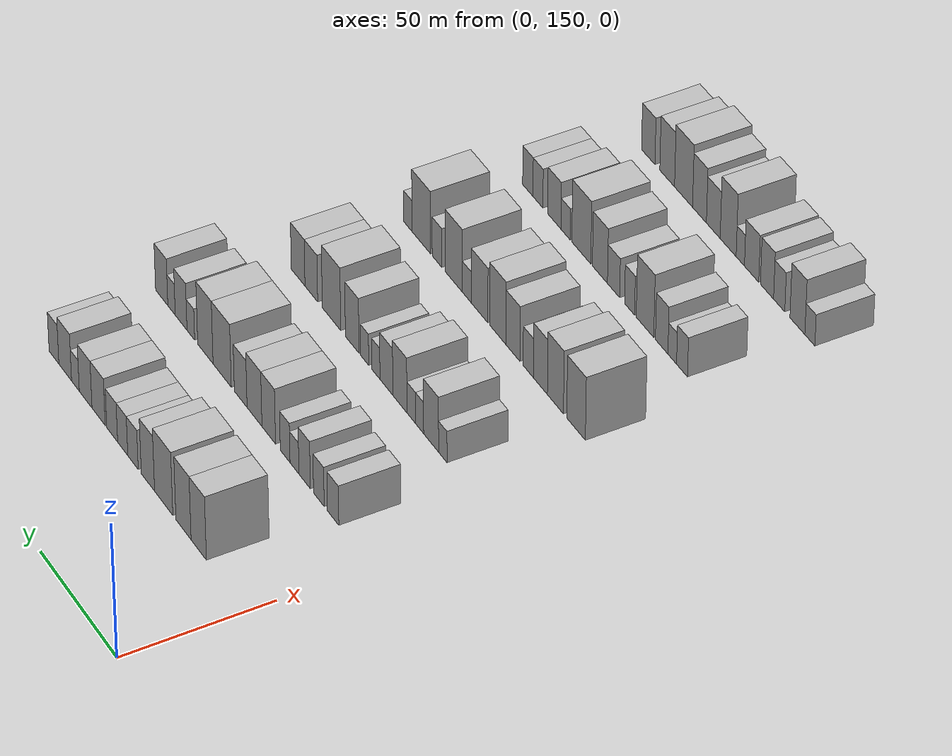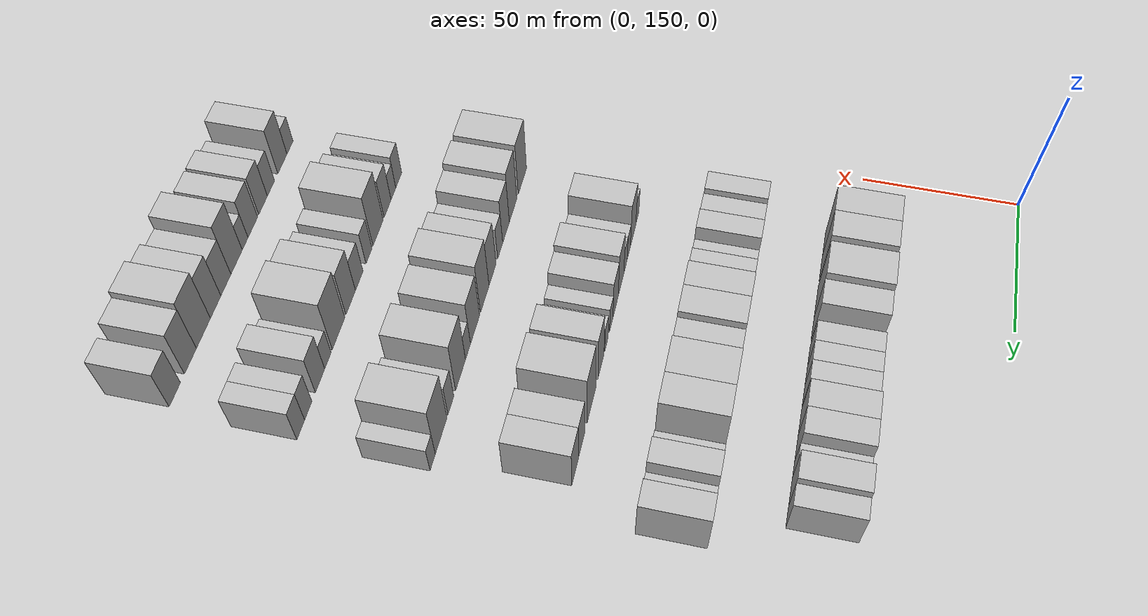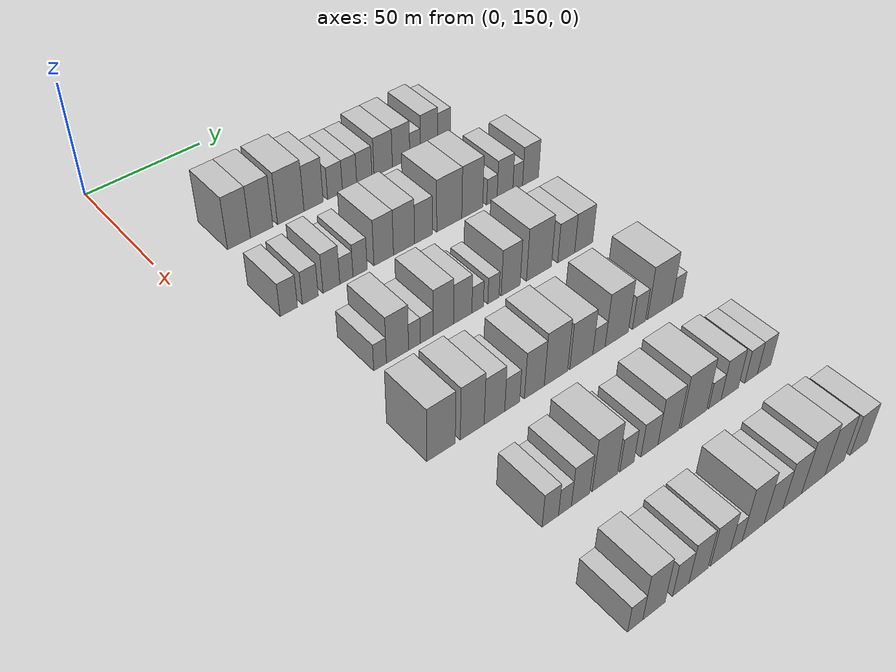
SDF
<sdf version="1.6">
 <world name="default">
  <model name="building_90">
   <static>1</static>
   <pose>50.0000 179.4211 0 0.000000 0.000000 0.000000</pose>
   <link name="link">
    <pose>0 0 12.00 0 0 0</pose>
    <collision name="collision"><geometry><box><size>20.0000 9.7847 24.0000</size></box></geometry></collision>
    <visual name="visual">
     <cast_shadows>0</cast_shadows>
     <geometry><box><size>20.0000 9.7847 24.0000</size></box></geometry>
     <material>
      <script>
       <uri>model://HANNAS_wall/materials/scripts</uri>
       <uri>model://HANNAS_wall/materials/textures</uri>
       <name>vrc/HANNAS_wall</name>
      </script>
     </material>
    </visual>
   </link>
  </model>
  <model name="building_91">
   <static>1</static>
   <pose>50.0000 189.1958 0 0.000000 0.000000 0.000000</pose>
   <link name="link">
    <pose>0 0 12.00 0 0 0</pose>
    <collision name="collision"><geometry><box><size>20.0000 9.7649 24.0000</size></box></geometry></collision>
    <visual name="visual">
     <cast_shadows>0</cast_shadows>
     <geometry><box><size>20.0000 9.7649 24.0000</size></box></geometry>
     <material>
      <script>
       <uri>model://HANNAS_wall/materials/scripts</uri>
       <uri>model://HANNAS_wall/materials/textures</uri>
       <name>vrc/HANNAS_wall</name>
      </script>
     </material>
    </visual>
   </link>
  </model>
  <model name="building_92">
   <static>1</static>
   <pose>50.0000 201.9867 0 0.000000 0.000000 0.000000</pose>
   <link name="link">
    <pose>0 0 12.00 0 0 0</pose>
    <collision name="collision"><geometry><box><size>20.0000 11.8168 24.0000</size></box></geometry></collision>
    <visual name="visual">
     <cast_shadows>0</cast_shadows>
     <geometry><box><size>20.0000 11.8168 24.0000</size></box></geometry>
     <material>
      <script>
       <uri>model://HANNAS_wall/materials/scripts</uri>
       <uri>model://HANNAS_wall/materials/textures</uri>
       <name>vrc/HANNAS_wall</name>
      </script>
     </material>
    </visual>
   </link>
  </model>
  <model name="building_93">
   <static>1</static>
   <pose>50.0000 212.2501 0 0.000000 0.000000 0.000000</pose>
   <link name="link">
    <pose>0 0 10.50 0 0 0</pose>
    <collision name="collision"><geometry><box><size>20.0000 8.7102 21.0000</size></box></geometry></collision>
    <visual name="visual">
     <cast_shadows>0</cast_shadows>
     <geometry><box><size>20.0000 8.7102 21.0000</size></box></geometry>
     <material>
      <script>
       <uri>model://HANNAS_wall/materials/scripts</uri>
       <uri>model://HANNAS_wall/materials/textures</uri>
       <name>vrc/HANNAS_wall</name>
      </script>
     </material>
    </visual>
   </link>
  </model>
  <model name="building_94">
   <static>1</static>
   <pose>50.0000 222.0430 0 0.000000 0.000000 0.000000</pose>
   <link name="link">
    <pose>0 0 7.50 0 0 0</pose>
    <collision name="collision"><geometry><box><size>20.0000 6.8756 15.0000</size></box></geometry></collision>
    <visual name="visual">
     <cast_shadows>0</cast_shadows>
     <geometry><box><size>20.0000 6.8756 15.0000</size></box></geometry>
     <material>
      <script>
       <uri>model://HANNAS_wall/materials/scripts</uri>
       <uri>model://HANNAS_wall/materials/textures</uri>
       <name>vrc/HANNAS_wall</name>
      </script>
     </material>
    </visual>
   </link>
  </model>
  <model name="building_95">
   <static>1</static>
   <pose>50.0000 228.8291 0 0.000000 0.000000 0.000000</pose>
   <link name="link">
    <pose>0 0 7.50 0 0 0</pose>
    <collision name="collision"><geometry><box><size>20.0000 6.6965 15.0000</size></box></geometry></collision>
    <visual name="visual">
     <cast_shadows>0</cast_shadows>
     <geometry><box><size>20.0000 6.6965 15.0000</size></box></geometry>
     <material>
      <script>
       <uri>model://HANNAS_wall/materials/scripts</uri>
       <uri>model://HANNAS_wall/materials/textures</uri>
       <name>vrc/HANNAS_wall</name>
      </script>
     </material>
    </visual>
   </link>
  </model>
  <model name="building_96">
   <static>1</static>
   <pose>50.0000 235.7858 0 0.000000 0.000000 0.000000</pose>
   <link name="link">
    <pose>0 0 7.50 0 0 0</pose>
    <collision name="collision"><geometry><box><size>20.0000 7.2170 15.0000</size></box></geometry></collision>
    <visual name="visual">
     <cast_shadows>0</cast_shadows>
     <geometry><box><size>20.0000 7.2170 15.0000</size></box></geometry>
     <material>
      <script>
       <uri>model://HANNAS_wall/materials/scripts</uri>
       <uri>model://HANNAS_wall/materials/textures</uri>
       <name>vrc/HANNAS_wall</name>
      </script>
     </material>
    </visual>
   </link>
  </model>
  <model name="building_97">
   <static>1</static>
   <pose>50.0000 244.8151 0 0.000000 0.000000 0.000000</pose>
   <link name="link">
    <pose>0 0 9.00 0 0 0</pose>
    <collision name="collision"><geometry><box><size>20.0000 8.8417 18.0000</size></box></geometry></collision>
    <visual name="visual">
     <cast_shadows>0</cast_shadows>
     <geometry><box><size>20.0000 8.8417 18.0000</size></box></geometry>
     <material>
      <script>
       <uri>model://HANNAS_wall/materials/scripts</uri>
       <uri>model://HANNAS_wall/materials/textures</uri>
       <name>vrc/HANNAS_wall</name>
      </script>
     </material>
    </visual>
   </link>
  </model>
  <model name="building_98">
   <static>1</static>
   <pose>50.0000 253.5076 0 0.000000 0.000000 0.000000</pose>
   <link name="link">
    <pose>0 0 9.00 0 0 0</pose>
    <collision name="collision"><geometry><box><size>20.0000 8.5432 18.0000</size></box></geometry></collision>
    <visual name="visual">
     <cast_shadows>0</cast_shadows>
     <geometry><box><size>20.0000 8.5432 18.0000</size></box></geometry>
     <material>
      <script>
       <uri>model://HANNAS_wall/materials/scripts</uri>
       <uri>model://HANNAS_wall/materials/textures</uri>
       <name>vrc/HANNAS_wall</name>
      </script>
     </material>
    </visual>
   </link>
  </model>
  <model name="building_99">
   <static>1</static>
   <pose>50.0000 260.3850 0 0.000000 0.000000 0.000000</pose>
   <link name="link">
    <pose>0 0 6.00 0 0 0</pose>
    <collision name="collision"><geometry><box><size>20.0000 5.2115 12.0000</size></box></geometry></collision>
    <visual name="visual">
     <cast_shadows>0</cast_shadows>
     <geometry><box><size>20.0000 5.2115 12.0000</size></box></geometry>
     <material>
      <script>
       <uri>model://HANNAS_wall/materials/scripts</uri>
       <uri>model://HANNAS_wall/materials/textures</uri>
       <name>vrc/HANNAS_wall</name>
      </script>
     </material>
    </visual>
   </link>
  </model>
  <model name="building_100">
   <static>1</static>
   <pose>50.0000 267.2898 0 0.000000 0.000000 0.000000</pose>
   <link name="link">
    <pose>0 0 9.00 0 0 0</pose>
    <collision name="collision"><geometry><box><size>20.0000 8.5982 18.0000</size></box></geometry></collision>
    <visual name="visual">
     <cast_shadows>0</cast_shadows>
     <geometry><box><size>20.0000 8.5982 18.0000</size></box></geometry>
     <material>
      <script>
       <uri>model://HANNAS_wall/materials/scripts</uri>
       <uri>model://HANNAS_wall/materials/textures</uri>
       <name>vrc/HANNAS_wall</name>
      </script>
     </material>
    </visual>
   </link>
  </model>
  <model name="building_101">
   <static>1</static>
   <pose>50.0000 274.9025 0 0.000000 0.000000 0.000000</pose>
   <link name="link">
    <pose>0 0 7.50 0 0 0</pose>
    <collision name="collision"><geometry><box><size>20.0000 6.6271 15.0000</size></box></geometry></collision>
    <visual name="visual">
     <cast_shadows>0</cast_shadows>
     <geometry><box><size>20.0000 6.6271 15.0000</size></box></geometry>
     <material>
      <script>
       <uri>model://HANNAS_wall/materials/scripts</uri>
       <uri>model://HANNAS_wall/materials/textures</uri>
       <name>vrc/HANNAS_wall</name>
      </script>
     </material>
    </visual>
   </link>
  </model>
  <model name="building_220">
   <static>1</static>
   <pose>90.0000 173.5427 0 0.000000 0.000000 0.000000</pose>
   <link name="link">
    <pose>0 0 7.50 0 0 0</pose>
    <collision name="collision"><geometry><box><size>20.0000 7.1521 15.0000</size></box></geometry></collision>
    <visual name="visual">
     <cast_shadows>0</cast_shadows>
     <geometry><box><size>20.0000 7.1521 15.0000</size></box></geometry>
     <material>
      <script>
       <uri>model://HANNAS_wall/materials/scripts</uri>
       <uri>model://HANNAS_wall/materials/textures</uri>
       <name>vrc/HANNAS_wall</name>
      </script>
     </material>
    </visual>
   </link>
  </model>
  <model name="building_221">
   <static>1</static>
   <pose>90.0000 182.4620 0 0.000000 0.000000 0.000000</pose>
   <link name="link">
    <pose>0 0 7.50 0 0 0</pose>
    <collision name="collision"><geometry><box><size>20.0000 6.6865 15.0000</size></box></geometry></collision>
    <visual name="visual">
     <cast_shadows>0</cast_shadows>
     <geometry><box><size>20.0000 6.6865 15.0000</size></box></geometry>
     <material>
      <script>
       <uri>model://HANNAS_wall/materials/scripts</uri>
       <uri>model://HANNAS_wall/materials/textures</uri>
       <name>vrc/HANNAS_wall</name>
      </script>
     </material>
    </visual>
   </link>
  </model>
  <model name="building_222">
   <static>1</static>
   <pose>90.0000 191.4088 0 0.000000 0.000000 0.000000</pose>
   <link name="link">
    <pose>0 0 9.00 0 0 0</pose>
    <collision name="collision"><geometry><box><size>20.0000 7.2071 18.0000</size></box></geometry></collision>
    <visual name="visual">
     <cast_shadows>0</cast_shadows>
     <geometry><box><size>20.0000 7.2071 18.0000</size></box></geometry>
     <material>
      <script>
       <uri>model://HANNAS_wall/materials/scripts</uri>
       <uri>model://HANNAS_wall/materials/textures</uri>
       <name>vrc/HANNAS_wall</name>
      </script>
     </material>
    </visual>
   </link>
  </model>
  <model name="building_223">
   <static>1</static>
   <pose>90.0000 197.8540 0 0.000000 0.000000 0.000000</pose>
   <link name="link">
    <pose>0 0 6.00 0 0 0</pose>
    <collision name="collision"><geometry><box><size>20.0000 5.6833 12.0000</size></box></geometry></collision>
    <visual name="visual">
     <cast_shadows>0</cast_shadows>
     <geometry><box><size>20.0000 5.6833 12.0000</size></box></geometry>
     <material>
      <script>
       <uri>model://HANNAS_wall/materials/scripts</uri>
       <uri>model://HANNAS_wall/materials/textures</uri>
       <name>vrc/HANNAS_wall</name>
      </script>
     </material>
    </visual>
   </link>
  </model>
  <model name="building_224">
   <static>1</static>
   <pose>90.0000 203.7961 0 0.000000 0.000000 0.000000</pose>
   <link name="link">
    <pose>0 0 7.50 0 0 0</pose>
    <collision name="collision"><geometry><box><size>20.0000 6.2010 15.0000</size></box></geometry></collision>
    <visual name="visual">
     <cast_shadows>0</cast_shadows>
     <geometry><box><size>20.0000 6.2010 15.0000</size></box></geometry>
     <material>
      <script>
       <uri>model://HANNAS_wall/materials/scripts</uri>
       <uri>model://HANNAS_wall/materials/textures</uri>
       <name>vrc/HANNAS_wall</name>
      </script>
     </material>
    </visual>
   </link>
  </model>
  <model name="building_225">
   <static>1</static>
   <pose>90.0000 214.2631 0 0.000000 0.000000 0.000000</pose>
   <link name="link">
    <pose>0 0 10.50 0 0 0</pose>
    <collision name="collision"><geometry><box><size>20.0000 8.7330 21.0000</size></box></geometry></collision>
    <visual name="visual">
     <cast_shadows>0</cast_shadows>
     <geometry><box><size>20.0000 8.7330 21.0000</size></box></geometry>
     <material>
      <script>
       <uri>model://HANNAS_wall/materials/scripts</uri>
       <uri>model://HANNAS_wall/materials/textures</uri>
       <name>vrc/HANNAS_wall</name>
      </script>
     </material>
    </visual>
   </link>
  </model>
  <model name="building_226">
   <static>1</static>
   <pose>90.0000 223.4414 0 0.000000 0.000000 0.000000</pose>
   <link name="link">
    <pose>0 0 10.50 0 0 0</pose>
    <collision name="collision"><geometry><box><size>20.0000 9.6238 21.0000</size></box></geometry></collision>
    <visual name="visual">
     <cast_shadows>0</cast_shadows>
     <geometry><box><size>20.0000 9.6238 21.0000</size></box></geometry>
     <material>
      <script>
       <uri>model://HANNAS_wall/materials/scripts</uri>
       <uri>model://HANNAS_wall/materials/textures</uri>
       <name>vrc/HANNAS_wall</name>
      </script>
     </material>
    </visual>
   </link>
  </model>
  <model name="building_227">
   <static>1</static>
   <pose>90.0000 232.3722 0 0.000000 0.000000 0.000000</pose>
   <link name="link">
    <pose>0 0 9.00 0 0 0</pose>
    <collision name="collision"><geometry><box><size>20.0000 8.2377 18.0000</size></box></geometry></collision>
    <visual name="visual">
     <cast_shadows>0</cast_shadows>
     <geometry><box><size>20.0000 8.2377 18.0000</size></box></geometry>
     <material>
      <script>
       <uri>model://HANNAS_wall/materials/scripts</uri>
       <uri>model://HANNAS_wall/materials/textures</uri>
       <name>vrc/HANNAS_wall</name>
      </script>
     </material>
    </visual>
   </link>
  </model>
  <model name="building_228">
   <static>1</static>
   <pose>90.0000 244.4556 0 0.000000 0.000000 0.000000</pose>
   <link name="link">
    <pose>0 0 12.00 0 0 0</pose>
    <collision name="collision"><geometry><box><size>20.0000 11.9292 24.0000</size></box></geometry></collision>
    <visual name="visual">
     <cast_shadows>0</cast_shadows>
     <geometry><box><size>20.0000 11.9292 24.0000</size></box></geometry>
     <material>
      <script>
       <uri>model://HANNAS_wall/materials/scripts</uri>
       <uri>model://HANNAS_wall/materials/textures</uri>
       <name>vrc/HANNAS_wall</name>
      </script>
     </material>
    </visual>
   </link>
  </model>
  <model name="building_229">
   <static>1</static>
   <pose>90.0000 255.4840 0 0.000000 0.000000 0.000000</pose>
   <link name="link">
    <pose>0 0 12.00 0 0 0</pose>
    <collision name="collision"><geometry><box><size>20.0000 10.1275 24.0000</size></box></geometry></collision>
    <visual name="visual">
     <cast_shadows>0</cast_shadows>
     <geometry><box><size>20.0000 10.1275 24.0000</size></box></geometry>
     <material>
      <script>
       <uri>model://HANNAS_wall/materials/scripts</uri>
       <uri>model://HANNAS_wall/materials/textures</uri>
       <name>vrc/HANNAS_wall</name>
      </script>
     </material>
    </visual>
   </link>
  </model>
  <model name="building_230">
   <static>1</static>
   <pose>90.0000 265.0940 0 0.000000 0.000000 0.000000</pose>
   <link name="link">
    <pose>0 0 6.00 0 0 0</pose>
    <collision name="collision"><geometry><box><size>20.0000 5.0926 12.0000</size></box></geometry></collision>
    <visual name="visual">
     <cast_shadows>0</cast_shadows>
     <geometry><box><size>20.0000 5.0926 12.0000</size></box></geometry>
     <material>
      <script>
       <uri>model://HANNAS_wall/materials/scripts</uri>
       <uri>model://HANNAS_wall/materials/textures</uri>
       <name>vrc/HANNAS_wall</name>
      </script>
     </material>
    </visual>
   </link>
  </model>
  <model name="building_231">
   <static>1</static>
   <pose>90.0000 271.5673 0 0.000000 0.000000 0.000000</pose>
   <link name="link">
    <pose>0 0 9.00 0 0 0</pose>
    <collision name="collision"><geometry><box><size>20.0000 7.8540 18.0000</size></box></geometry></collision>
    <visual name="visual">
     <cast_shadows>0</cast_shadows>
     <geometry><box><size>20.0000 7.8540 18.0000</size></box></geometry>
     <material>
      <script>
       <uri>model://HANNAS_wall/materials/scripts</uri>
       <uri>model://HANNAS_wall/materials/textures</uri>
       <name>vrc/HANNAS_wall</name>
      </script>
     </material>
    </visual>
   </link>
  </model>
  <model name="building_232">
   <static>1</static>
   <pose>90.0000 277.9655 0 0.000000 0.000000 0.000000</pose>
   <link name="link">
    <pose>0 0 6.00 0 0 0</pose>
    <collision name="collision"><geometry><box><size>20.0000 4.9425 12.0000</size></box></geometry></collision>
    <visual name="visual">
     <cast_shadows>0</cast_shadows>
     <geometry><box><size>20.0000 4.9425 12.0000</size></box></geometry>
     <material>
      <script>
       <uri>model://HANNAS_wall/materials/scripts</uri>
       <uri>model://HANNAS_wall/materials/textures</uri>
       <name>vrc/HANNAS_wall</name>
      </script>
     </material>
    </visual>
   </link>
  </model>
  <model name="building_233">
   <static>1</static>
   <pose>90.0000 284.5342 0 0.000000 0.000000 0.000000</pose>
   <link name="link">
    <pose>0 0 9.00 0 0 0</pose>
    <collision name="collision"><geometry><box><size>20.0000 8.1949 18.0000</size></box></geometry></collision>
    <visual name="visual">
     <cast_shadows>0</cast_shadows>
     <geometry><box><size>20.0000 8.1949 18.0000</size></box></geometry>
     <material>
      <script>
       <uri>model://HANNAS_wall/materials/scripts</uri>
       <uri>model://HANNAS_wall/materials/textures</uri>
       <name>vrc/HANNAS_wall</name>
      </script>
     </material>
    </visual>
   </link>
  </model>
  <model name="building_368">
   <static>1</static>
   <pose>130.0000 181.9561 0 0.000000 0.000000 0.000000</pose>
   <link name="link">
    <pose>0 0 6.00 0 0 0</pose>
    <collision name="collision"><geometry><box><size>20.0000 5.2138 12.0000</size></box></geometry></collision>
    <visual name="visual">
     <cast_shadows>0</cast_shadows>
     <geometry><box><size>20.0000 5.2138 12.0000</size></box></geometry>
     <material>
      <script>
       <uri>model://HANNAS_wall/materials/scripts</uri>
       <uri>model://HANNAS_wall/materials/textures</uri>
       <name>vrc/HANNAS_wall</name>
      </script>
     </material>
    </visual>
   </link>
  </model>
  <model name="building_369">
   <static>1</static>
   <pose>130.0000 189.1743 0 0.000000 0.000000 0.000000</pose>
   <link name="link">
    <pose>0 0 10.50 0 0 0</pose>
    <collision name="collision"><geometry><box><size>20.0000 9.2226 21.0000</size></box></geometry></collision>
    <visual name="visual">
     <cast_shadows>0</cast_shadows>
     <geometry><box><size>20.0000 9.2226 21.0000</size></box></geometry>
     <material>
      <script>
       <uri>model://HANNAS_wall/materials/scripts</uri>
       <uri>model://HANNAS_wall/materials/textures</uri>
       <name>vrc/HANNAS_wall</name>
      </script>
     </material>
    </visual>
   </link>
  </model>
  <model name="building_370">
   <static>1</static>
   <pose>130.0000 196.2952 0 0.000000 0.000000 0.000000</pose>
   <link name="link">
    <pose>0 0 6.00 0 0 0</pose>
    <collision name="collision"><geometry><box><size>20.0000 5.0194 12.0000</size></box></geometry></collision>
    <visual name="visual">
     <cast_shadows>0</cast_shadows>
     <geometry><box><size>20.0000 5.0194 12.0000</size></box></geometry>
     <material>
      <script>
       <uri>model://HANNAS_wall/materials/scripts</uri>
       <uri>model://HANNAS_wall/materials/textures</uri>
       <name>vrc/HANNAS_wall</name>
      </script>
     </material>
    </visual>
   </link>
  </model>
  <model name="building_371">
   <static>1</static>
   <pose>130.0000 201.5131 0 0.000000 0.000000 0.000000</pose>
   <link name="link">
    <pose>0 0 6.00 0 0 0</pose>
    <collision name="collision"><geometry><box><size>20.0000 5.4164 12.0000</size></box></geometry></collision>
    <visual name="visual">
     <cast_shadows>0</cast_shadows>
     <geometry><box><size>20.0000 5.4164 12.0000</size></box></geometry>
     <material>
      <script>
       <uri>model://HANNAS_wall/materials/scripts</uri>
       <uri>model://HANNAS_wall/materials/textures</uri>
       <name>vrc/HANNAS_wall</name>
      </script>
     </material>
    </visual>
   </link>
  </model>
  <model name="building_372">
   <static>1</static>
   <pose>130.0000 208.6419 0 0.000000 0.000000 0.000000</pose>
   <link name="link">
    <pose>0 0 10.50 0 0 0</pose>
    <collision name="collision"><geometry><box><size>20.0000 8.8411 21.0000</size></box></geometry></collision>
    <visual name="visual">
     <cast_shadows>0</cast_shadows>
     <geometry><box><size>20.0000 8.8411 21.0000</size></box></geometry>
     <material>
      <script>
       <uri>model://HANNAS_wall/materials/scripts</uri>
       <uri>model://HANNAS_wall/materials/textures</uri>
       <name>vrc/HANNAS_wall</name>
      </script>
     </material>
    </visual>
   </link>
  </model>
  <model name="building_373">
   <static>1</static>
   <pose>130.0000 217.1246 0 0.000000 0.000000 0.000000</pose>
   <link name="link">
    <pose>0 0 9.00 0 0 0</pose>
    <collision name="collision"><geometry><box><size>20.0000 8.1243 18.0000</size></box></geometry></collision>
    <visual name="visual">
     <cast_shadows>0</cast_shadows>
     <geometry><box><size>20.0000 8.1243 18.0000</size></box></geometry>
     <material>
      <script>
       <uri>model://HANNAS_wall/materials/scripts</uri>
       <uri>model://HANNAS_wall/materials/textures</uri>
       <name>vrc/HANNAS_wall</name>
      </script>
     </material>
    </visual>
   </link>
  </model>
  <model name="building_374">
   <static>1</static>
   <pose>130.0000 223.7566 0 0.000000 0.000000 0.000000</pose>
   <link name="link">
    <pose>0 0 6.00 0 0 0</pose>
    <collision name="collision"><geometry><box><size>20.0000 5.1398 12.0000</size></box></geometry></collision>
    <visual name="visual">
     <cast_shadows>0</cast_shadows>
     <geometry><box><size>20.0000 5.1398 12.0000</size></box></geometry>
     <material>
      <script>
       <uri>model://HANNAS_wall/materials/scripts</uri>
       <uri>model://HANNAS_wall/materials/textures</uri>
       <name>vrc/HANNAS_wall</name>
      </script>
     </material>
    </visual>
   </link>
  </model>
  <model name="building_375">
   <static>1</static>
   <pose>130.0000 230.9018 0 0.000000 0.000000 0.000000</pose>
   <link name="link">
    <pose>0 0 6.00 0 0 0</pose>
    <collision name="collision"><geometry><box><size>20.0000 5.1505 12.0000</size></box></geometry></collision>
    <visual name="visual">
     <cast_shadows>0</cast_shadows>
     <geometry><box><size>20.0000 5.1505 12.0000</size></box></geometry>
     <material>
      <script>
       <uri>model://HANNAS_wall/materials/scripts</uri>
       <uri>model://HANNAS_wall/materials/textures</uri>
       <name>vrc/HANNAS_wall</name>
      </script>
     </material>
    </visual>
   </link>
  </model>
  <model name="building_376">
   <static>1</static>
   <pose>130.0000 238.8369 0 0.000000 0.000000 0.000000</pose>
   <link name="link">
    <pose>0 0 10.50 0 0 0</pose>
    <collision name="collision"><geometry><box><size>20.0000 8.7198 21.0000</size></box></geometry></collision>
    <visual name="visual">
     <cast_shadows>0</cast_shadows>
     <geometry><box><size>20.0000 8.7198 21.0000</size></box></geometry>
     <material>
      <script>
       <uri>model://HANNAS_wall/materials/scripts</uri>
       <uri>model://HANNAS_wall/materials/textures</uri>
       <name>vrc/HANNAS_wall</name>
      </script>
     </material>
    </visual>
   </link>
  </model>
  <model name="building_377">
   <static>1</static>
   <pose>130.0000 252.1449 0 0.000000 0.000000 0.000000</pose>
   <link name="link">
    <pose>0 0 12.00 0 0 0</pose>
    <collision name="collision"><geometry><box><size>20.0000 11.8963 24.0000</size></box></geometry></collision>
    <visual name="visual">
     <cast_shadows>0</cast_shadows>
     <geometry><box><size>20.0000 11.8963 24.0000</size></box></geometry>
     <material>
      <script>
       <uri>model://HANNAS_wall/materials/scripts</uri>
       <uri>model://HANNAS_wall/materials/textures</uri>
       <name>vrc/HANNAS_wall</name>
      </script>
     </material>
    </visual>
   </link>
  </model>
  <model name="building_378">
   <static>1</static>
   <pose>130.0000 265.2311 0 0.000000 0.000000 0.000000</pose>
   <link name="link">
    <pose>0 0 9.00 0 0 0</pose>
    <collision name="collision"><geometry><box><size>20.0000 8.2760 18.0000</size></box></geometry></collision>
    <visual name="visual">
     <cast_shadows>0</cast_shadows>
     <geometry><box><size>20.0000 8.2760 18.0000</size></box></geometry>
     <material>
      <script>
       <uri>model://HANNAS_wall/materials/scripts</uri>
       <uri>model://HANNAS_wall/materials/textures</uri>
       <name>vrc/HANNAS_wall</name>
      </script>
     </material>
    </visual>
   </link>
  </model>
  <model name="building_379">
   <static>1</static>
   <pose>130.0000 273.8422 0 0.000000 0.000000 0.000000</pose>
   <link name="link">
    <pose>0 0 9.00 0 0 0</pose>
    <collision name="collision"><geometry><box><size>20.0000 8.9462 18.0000</size></box></geometry></collision>
    <visual name="visual">
     <cast_shadows>0</cast_shadows>
     <geometry><box><size>20.0000 8.9462 18.0000</size></box></geometry>
     <material>
      <script>
       <uri>model://HANNAS_wall/materials/scripts</uri>
       <uri>model://HANNAS_wall/materials/textures</uri>
       <name>vrc/HANNAS_wall</name>
      </script>
     </material>
    </visual>
   </link>
  </model>
  <model name="building_500">
   <static>1</static>
   <pose>170.0000 174.7738 0 0.000000 0.000000 0.000000</pose>
   <link name="link">
    <pose>0 0 12.00 0 0 0</pose>
    <collision name="collision"><geometry><box><size>20.0000 11.2404 24.0000</size></box></geometry></collision>
    <visual name="visual">
     <cast_shadows>0</cast_shadows>
     <geometry><box><size>20.0000 11.2404 24.0000</size></box></geometry>
     <material>
      <script>
       <uri>model://HANNAS_wall/materials/scripts</uri>
       <uri>model://HANNAS_wall/materials/textures</uri>
       <name>vrc/HANNAS_wall</name>
      </script>
     </material>
    </visual>
   </link>
  </model>
  <model name="building_501">
   <static>1</static>
   <pose>170.0000 187.2633 0 0.000000 0.000000 0.000000</pose>
   <link name="link">
    <pose>0 0 12.00 0 0 0</pose>
    <collision name="collision"><geometry><box><size>20.0000 9.7385 24.0000</size></box></geometry></collision>
    <visual name="visual">
     <cast_shadows>0</cast_shadows>
     <geometry><box><size>20.0000 9.7385 24.0000</size></box></geometry>
     <material>
      <script>
       <uri>model://HANNAS_wall/materials/scripts</uri>
       <uri>model://HANNAS_wall/materials/textures</uri>
       <name>vrc/HANNAS_wall</name>
      </script>
     </material>
    </visual>
   </link>
  </model>
  <model name="building_502">
   <static>1</static>
   <pose>170.0000 196.4037 0 0.000000 0.000000 0.000000</pose>
   <link name="link">
    <pose>0 0 10.50 0 0 0</pose>
    <collision name="collision"><geometry><box><size>20.0000 8.5424 21.0000</size></box></geometry></collision>
    <visual name="visual">
     <cast_shadows>0</cast_shadows>
     <geometry><box><size>20.0000 8.5424 21.0000</size></box></geometry>
     <material>
      <script>
       <uri>model://HANNAS_wall/materials/scripts</uri>
       <uri>model://HANNAS_wall/materials/textures</uri>
       <name>vrc/HANNAS_wall</name>
      </script>
     </material>
    </visual>
   </link>
  </model>
  <model name="building_503">
   <static>1</static>
   <pose>170.0000 203.8468 0 0.000000 0.000000 0.000000</pose>
   <link name="link">
    <pose>0 0 7.50 0 0 0</pose>
    <collision name="collision"><geometry><box><size>20.0000 6.3437 15.0000</size></box></geometry></collision>
    <visual name="visual">
     <cast_shadows>0</cast_shadows>
     <geometry><box><size>20.0000 6.3437 15.0000</size></box></geometry>
     <material>
      <script>
       <uri>model://HANNAS_wall/materials/scripts</uri>
       <uri>model://HANNAS_wall/materials/textures</uri>
       <name>vrc/HANNAS_wall</name>
      </script>
     </material>
    </visual>
   </link>
  </model>
  <model name="building_504">
   <static>1</static>
   <pose>170.0000 213.3182 0 0.000000 0.000000 0.000000</pose>
   <link name="link">
    <pose>0 0 10.50 0 0 0</pose>
    <collision name="collision"><geometry><box><size>20.0000 8.5991 21.0000</size></box></geometry></collision>
    <visual name="visual">
     <cast_shadows>0</cast_shadows>
     <geometry><box><size>20.0000 8.5991 21.0000</size></box></geometry>
     <material>
      <script>
       <uri>model://HANNAS_wall/materials/scripts</uri>
       <uri>model://HANNAS_wall/materials/textures</uri>
       <name>vrc/HANNAS_wall</name>
      </script>
     </material>
    </visual>
   </link>
  </model>
  <model name="building_505">
   <static>1</static>
   <pose>170.0000 222.7551 0 0.000000 0.000000 0.000000</pose>
   <link name="link">
    <pose>0 0 12.00 0 0 0</pose>
    <collision name="collision"><geometry><box><size>20.0000 10.2748 24.0000</size></box></geometry></collision>
    <visual name="visual">
     <cast_shadows>0</cast_shadows>
     <geometry><box><size>20.0000 10.2748 24.0000</size></box></geometry>
     <material>
      <script>
       <uri>model://HANNAS_wall/materials/scripts</uri>
       <uri>model://HANNAS_wall/materials/textures</uri>
       <name>vrc/HANNAS_wall</name>
      </script>
     </material>
    </visual>
   </link>
  </model>
  <model name="building_506">
   <static>1</static>
   <pose>170.0000 234.1206 0 0.000000 0.000000 0.000000</pose>
   <link name="link">
    <pose>0 0 10.50 0 0 0</pose>
    <collision name="collision"><geometry><box><size>20.0000 10.4562 21.0000</size></box></geometry></collision>
    <visual name="visual">
     <cast_shadows>0</cast_shadows>
     <geometry><box><size>20.0000 10.4562 21.0000</size></box></geometry>
     <material>
      <script>
       <uri>model://HANNAS_wall/materials/scripts</uri>
       <uri>model://HANNAS_wall/materials/textures</uri>
       <name>vrc/HANNAS_wall</name>
      </script>
     </material>
    </visual>
   </link>
  </model>
  <model name="building_507">
   <static>1</static>
   <pose>170.0000 242.1621 0 0.000000 0.000000 0.000000</pose>
   <link name="link">
    <pose>0 0 6.00 0 0 0</pose>
    <collision name="collision"><geometry><box><size>20.0000 5.6269 12.0000</size></box></geometry></collision>
    <visual name="visual">
     <cast_shadows>0</cast_shadows>
     <geometry><box><size>20.0000 5.6269 12.0000</size></box></geometry>
     <material>
      <script>
       <uri>model://HANNAS_wall/materials/scripts</uri>
       <uri>model://HANNAS_wall/materials/textures</uri>
       <name>vrc/HANNAS_wall</name>
      </script>
     </material>
    </visual>
   </link>
  </model>
  <model name="building_508">
   <static>1</static>
   <pose>170.0000 250.4189 0 0.000000 0.000000 0.000000</pose>
   <link name="link">
    <pose>0 0 12.00 0 0 0</pose>
    <collision name="collision"><geometry><box><size>20.0000 10.8867 24.0000</size></box></geometry></collision>
    <visual name="visual">
     <cast_shadows>0</cast_shadows>
     <geometry><box><size>20.0000 10.8867 24.0000</size></box></geometry>
     <material>
      <script>
       <uri>model://HANNAS_wall/materials/scripts</uri>
       <uri>model://HANNAS_wall/materials/textures</uri>
       <name>vrc/HANNAS_wall</name>
      </script>
     </material>
    </visual>
   </link>
  </model>
  <model name="building_509">
   <static>1</static>
   <pose>170.0000 260.9654 0 0.000000 0.000000 0.000000</pose>
   <link name="link">
    <pose>0 0 7.50 0 0 0</pose>
    <collision name="collision"><geometry><box><size>20.0000 6.2062 15.0000</size></box></geometry></collision>
    <visual name="visual">
     <cast_shadows>0</cast_shadows>
     <geometry><box><size>20.0000 6.2062 15.0000</size></box></geometry>
     <material>
      <script>
       <uri>model://HANNAS_wall/materials/scripts</uri>
       <uri>model://HANNAS_wall/materials/textures</uri>
       <name>vrc/HANNAS_wall</name>
      </script>
     </material>
    </visual>
   </link>
  </model>
  <model name="building_510">
   <static>1</static>
   <pose>170.0000 271.0658 0 0.000000 0.000000 0.000000</pose>
   <link name="link">
    <pose>0 0 12.00 0 0 0</pose>
    <collision name="collision"><geometry><box><size>20.0000 11.9945 24.0000</size></box></geometry></collision>
    <visual name="visual">
     <cast_shadows>0</cast_shadows>
     <geometry><box><size>20.0000 11.9945 24.0000</size></box></geometry>
     <material>
      <script>
       <uri>model://HANNAS_wall/materials/scripts</uri>
       <uri>model://HANNAS_wall/materials/textures</uri>
       <name>vrc/HANNAS_wall</name>
      </script>
     </material>
    </visual>
   </link>
  </model>
  <model name="building_511">
   <static>1</static>
   <pose>170.0000 279.7124 0 0.000000 0.000000 0.000000</pose>
   <link name="link">
    <pose>0 0 6.00 0 0 0</pose>
    <collision name="collision"><geometry><box><size>20.0000 5.2987 12.0000</size></box></geometry></collision>
    <visual name="visual">
     <cast_shadows>0</cast_shadows>
     <geometry><box><size>20.0000 5.2987 12.0000</size></box></geometry>
     <material>
      <script>
       <uri>model://HANNAS_wall/materials/scripts</uri>
       <uri>model://HANNAS_wall/materials/textures</uri>
       <name>vrc/HANNAS_wall</name>
      </script>
     </material>
    </visual>
   </link>
  </model>
  <model name="building_633">
   <static>1</static>
   <pose>210.0000 183.0393 0 0.000000 0.000000 0.000000</pose>
   <link name="link">
    <pose>0 0 7.50 0 0 0</pose>
    <collision name="collision"><geometry><box><size>20.0000 6.5127 15.0000</size></box></geometry></collision>
    <visual name="visual">
     <cast_shadows>0</cast_shadows>
     <geometry><box><size>20.0000 6.5127 15.0000</size></box></geometry>
     <material>
      <script>
       <uri>model://HANNAS_wall/materials/scripts</uri>
       <uri>model://HANNAS_wall/materials/textures</uri>
       <name>vrc/HANNAS_wall</name>
      </script>
     </material>
    </visual>
   </link>
  </model>
  <model name="building_634">
   <static>1</static>
   <pose>210.0000 188.8818 0 0.000000 0.000000 0.000000</pose>
   <link name="link">
    <pose>0 0 6.00 0 0 0</pose>
    <collision name="collision"><geometry><box><size>20.0000 5.1724 12.0000</size></box></geometry></collision>
    <visual name="visual">
     <cast_shadows>0</cast_shadows>
     <geometry><box><size>20.0000 5.1724 12.0000</size></box></geometry>
     <material>
      <script>
       <uri>model://HANNAS_wall/materials/scripts</uri>
       <uri>model://HANNAS_wall/materials/textures</uri>
       <name>vrc/HANNAS_wall</name>
      </script>
     </material>
    </visual>
   </link>
  </model>
  <model name="building_635">
   <static>1</static>
   <pose>210.0000 195.2234 0 0.000000 0.000000 0.000000</pose>
   <link name="link">
    <pose>0 0 9.00 0 0 0</pose>
    <collision name="collision"><geometry><box><size>20.0000 7.5109 18.0000</size></box></geometry></collision>
    <visual name="visual">
     <cast_shadows>0</cast_shadows>
     <geometry><box><size>20.0000 7.5109 18.0000</size></box></geometry>
     <material>
      <script>
       <uri>model://HANNAS_wall/materials/scripts</uri>
       <uri>model://HANNAS_wall/materials/textures</uri>
       <name>vrc/HANNAS_wall</name>
      </script>
     </material>
    </visual>
   </link>
  </model>
  <model name="building_636">
   <static>1</static>
   <pose>210.0000 205.2853 0 0.000000 0.000000 0.000000</pose>
   <link name="link">
    <pose>0 0 12.00 0 0 0</pose>
    <collision name="collision"><geometry><box><size>20.0000 10.6129 24.0000</size></box></geometry></collision>
    <visual name="visual">
     <cast_shadows>0</cast_shadows>
     <geometry><box><size>20.0000 10.6129 24.0000</size></box></geometry>
     <material>
      <script>
       <uri>model://HANNAS_wall/materials/scripts</uri>
       <uri>model://HANNAS_wall/materials/textures</uri>
       <name>vrc/HANNAS_wall</name>
      </script>
     </material>
    </visual>
   </link>
  </model>
  <model name="building_637">
   <static>1</static>
   <pose>210.0000 214.6285 0 0.000000 0.000000 0.000000</pose>
   <link name="link">
    <pose>0 0 7.50 0 0 0</pose>
    <collision name="collision"><geometry><box><size>20.0000 6.0734 15.0000</size></box></geometry></collision>
    <visual name="visual">
     <cast_shadows>0</cast_shadows>
     <geometry><box><size>20.0000 6.0734 15.0000</size></box></geometry>
     <material>
      <script>
       <uri>model://HANNAS_wall/materials/scripts</uri>
       <uri>model://HANNAS_wall/materials/textures</uri>
       <name>vrc/HANNAS_wall</name>
      </script>
     </material>
    </visual>
   </link>
  </model>
  <model name="building_638">
   <static>1</static>
   <pose>210.0000 224.4050 0 0.000000 0.000000 0.000000</pose>
   <link name="link">
    <pose>0 0 7.50 0 0 0</pose>
    <collision name="collision"><geometry><box><size>20.0000 7.4796 15.0000</size></box></geometry></collision>
    <visual name="visual">
     <cast_shadows>0</cast_shadows>
     <geometry><box><size>20.0000 7.4796 15.0000</size></box></geometry>
     <material>
      <script>
       <uri>model://HANNAS_wall/materials/scripts</uri>
       <uri>model://HANNAS_wall/materials/textures</uri>
       <name>vrc/HANNAS_wall</name>
      </script>
     </material>
    </visual>
   </link>
  </model>
  <model name="building_639">
   <static>1</static>
   <pose>210.0000 232.7777 0 0.000000 0.000000 0.000000</pose>
   <link name="link">
    <pose>0 0 10.50 0 0 0</pose>
    <collision name="collision"><geometry><box><size>20.0000 9.2658 21.0000</size></box></geometry></collision>
    <visual name="visual">
     <cast_shadows>0</cast_shadows>
     <geometry><box><size>20.0000 9.2658 21.0000</size></box></geometry>
     <material>
      <script>
       <uri>model://HANNAS_wall/materials/scripts</uri>
       <uri>model://HANNAS_wall/materials/textures</uri>
       <name>vrc/HANNAS_wall</name>
      </script>
     </material>
    </visual>
   </link>
  </model>
  <model name="building_640">
   <static>1</static>
   <pose>210.0000 244.2996 0 0.000000 0.000000 0.000000</pose>
   <link name="link">
    <pose>0 0 12.00 0 0 0</pose>
    <collision name="collision"><geometry><box><size>20.0000 11.7779 24.0000</size></box></geometry></collision>
    <visual name="visual">
     <cast_shadows>0</cast_shadows>
     <geometry><box><size>20.0000 11.7779 24.0000</size></box></geometry>
     <material>
      <script>
       <uri>model://HANNAS_wall/materials/scripts</uri>
       <uri>model://HANNAS_wall/materials/textures</uri>
       <name>vrc/HANNAS_wall</name>
      </script>
     </material>
    </visual>
   </link>
  </model>
  <model name="building_641">
   <static>1</static>
   <pose>210.0000 254.0895 0 0.000000 0.000000 0.000000</pose>
   <link name="link">
    <pose>0 0 6.00 0 0 0</pose>
    <collision name="collision"><geometry><box><size>20.0000 5.8020 12.0000</size></box></geometry></collision>
    <visual name="visual">
     <cast_shadows>0</cast_shadows>
     <geometry><box><size>20.0000 5.8020 12.0000</size></box></geometry>
     <material>
      <script>
       <uri>model://HANNAS_wall/materials/scripts</uri>
       <uri>model://HANNAS_wall/materials/textures</uri>
       <name>vrc/HANNAS_wall</name>
      </script>
     </material>
    </visual>
   </link>
  </model>
  <model name="building_642">
   <static>1</static>
   <pose>210.0000 261.1366 0 0.000000 0.000000 0.000000</pose>
   <link name="link">
    <pose>0 0 9.00 0 0 0</pose>
    <collision name="collision"><geometry><box><size>20.0000 8.2922 18.0000</size></box></geometry></collision>
    <visual name="visual">
     <cast_shadows>0</cast_shadows>
     <geometry><box><size>20.0000 8.2922 18.0000</size></box></geometry>
     <material>
      <script>
       <uri>model://HANNAS_wall/materials/scripts</uri>
       <uri>model://HANNAS_wall/materials/textures</uri>
       <name>vrc/HANNAS_wall</name>
      </script>
     </material>
    </visual>
   </link>
  </model>
  <model name="building_643">
   <static>1</static>
   <pose>210.0000 271.4133 0 0.000000 0.000000 0.000000</pose>
   <link name="link">
    <pose>0 0 7.50 0 0 0</pose>
    <collision name="collision"><geometry><box><size>20.0000 6.2611 15.0000</size></box></geometry></collision>
    <visual name="visual">
     <cast_shadows>0</cast_shadows>
     <geometry><box><size>20.0000 6.2611 15.0000</size></box></geometry>
     <material>
      <script>
       <uri>model://HANNAS_wall/materials/scripts</uri>
       <uri>model://HANNAS_wall/materials/textures</uri>
       <name>vrc/HANNAS_wall</name>
      </script>
     </material>
    </visual>
   </link>
  </model>
  <model name="building_644">
   <static>1</static>
   <pose>210.0000 277.8252 0 0.000000 0.000000 0.000000</pose>
   <link name="link">
    <pose>0 0 7.50 0 0 0</pose>
    <collision name="collision"><geometry><box><size>20.0000 6.5627 15.0000</size></box></geometry></collision>
    <visual name="visual">
     <cast_shadows>0</cast_shadows>
     <geometry><box><size>20.0000 6.5627 15.0000</size></box></geometry>
     <material>
      <script>
       <uri>model://HANNAS_wall/materials/scripts</uri>
       <uri>model://HANNAS_wall/materials/textures</uri>
       <name>vrc/HANNAS_wall</name>
      </script>
     </material>
    </visual>
   </link>
  </model>
  <model name="building_767">
   <static>1</static>
   <pose>250.0000 177.2431 0 0.000000 0.000000 0.000000</pose>
   <link name="link">
    <pose>0 0 6.00 0 0 0</pose>
    <collision name="collision"><geometry><box><size>20.0000 5.8781 12.0000</size></box></geometry></collision>
    <visual name="visual">
     <cast_shadows>0</cast_shadows>
     <geometry><box><size>20.0000 5.8781 12.0000</size></box></geometry>
     <material>
      <script>
       <uri>model://HANNAS_wall/materials/scripts</uri>
       <uri>model://HANNAS_wall/materials/textures</uri>
       <name>vrc/HANNAS_wall</name>
      </script>
     </material>
    </visual>
   </link>
  </model>
  <model name="building_768">
   <static>1</static>
   <pose>250.0000 184.5756 0 0.000000 0.000000 0.000000</pose>
   <link name="link">
    <pose>0 0 10.50 0 0 0</pose>
    <collision name="collision"><geometry><box><size>20.0000 8.7869 21.0000</size></box></geometry></collision>
    <visual name="visual">
     <cast_shadows>0</cast_shadows>
     <geometry><box><size>20.0000 8.7869 21.0000</size></box></geometry>
     <material>
      <script>
       <uri>model://HANNAS_wall/materials/scripts</uri>
       <uri>model://HANNAS_wall/materials/textures</uri>
       <name>vrc/HANNAS_wall</name>
      </script>
     </material>
    </visual>
   </link>
  </model>
  <model name="building_769">
   <static>1</static>
   <pose>250.0000 195.2912 0 0.000000 0.000000 0.000000</pose>
   <link name="link">
    <pose>0 0 7.50 0 0 0</pose>
    <collision name="collision"><geometry><box><size>20.0000 6.6443 15.0000</size></box></geometry></collision>
    <visual name="visual">
     <cast_shadows>0</cast_shadows>
     <geometry><box><size>20.0000 6.6443 15.0000</size></box></geometry>
     <material>
      <script>
       <uri>model://HANNAS_wall/materials/scripts</uri>
       <uri>model://HANNAS_wall/materials/textures</uri>
       <name>vrc/HANNAS_wall</name>
      </script>
     </material>
    </visual>
   </link>
  </model>
  <model name="building_770">
   <static>1</static>
   <pose>250.0000 202.5286 0 0.000000 0.000000 0.000000</pose>
   <link name="link">
    <pose>0 0 9.00 0 0 0</pose>
    <collision name="collision"><geometry><box><size>20.0000 7.8304 18.0000</size></box></geometry></collision>
    <visual name="visual">
     <cast_shadows>0</cast_shadows>
     <geometry><box><size>20.0000 7.8304 18.0000</size></box></geometry>
     <material>
      <script>
       <uri>model://HANNAS_wall/materials/scripts</uri>
       <uri>model://HANNAS_wall/materials/textures</uri>
       <name>vrc/HANNAS_wall</name>
      </script>
     </material>
    </visual>
   </link>
  </model>
  <model name="building_771">
   <static>1</static>
   <pose>250.0000 211.6983 0 0.000000 0.000000 0.000000</pose>
   <link name="link">
    <pose>0 0 9.00 0 0 0</pose>
    <collision name="collision"><geometry><box><size>20.0000 8.5091 18.0000</size></box></geometry></collision>
    <visual name="visual">
     <cast_shadows>0</cast_shadows>
     <geometry><box><size>20.0000 8.5091 18.0000</size></box></geometry>
     <material>
      <script>
       <uri>model://HANNAS_wall/materials/scripts</uri>
       <uri>model://HANNAS_wall/materials/textures</uri>
       <name>vrc/HANNAS_wall</name>
      </script>
     </material>
    </visual>
   </link>
  </model>
  <model name="building_772">
   <static>1</static>
   <pose>250.0000 218.4577 0 0.000000 0.000000 0.000000</pose>
   <link name="link">
    <pose>0 0 6.00 0 0 0</pose>
    <collision name="collision"><geometry><box><size>20.0000 5.0096 12.0000</size></box></geometry></collision>
    <visual name="visual">
     <cast_shadows>0</cast_shadows>
     <geometry><box><size>20.0000 5.0096 12.0000</size></box></geometry>
     <material>
      <script>
       <uri>model://HANNAS_wall/materials/scripts</uri>
       <uri>model://HANNAS_wall/materials/textures</uri>
       <name>vrc/HANNAS_wall</name>
      </script>
     </material>
    </visual>
   </link>
  </model>
  <model name="building_773">
   <static>1</static>
   <pose>250.0000 225.7752 0 0.000000 0.000000 0.000000</pose>
   <link name="link">
    <pose>0 0 12.00 0 0 0</pose>
    <collision name="collision"><geometry><box><size>20.0000 9.6254 24.0000</size></box></geometry></collision>
    <visual name="visual">
     <cast_shadows>0</cast_shadows>
     <geometry><box><size>20.0000 9.6254 24.0000</size></box></geometry>
     <material>
      <script>
       <uri>model://HANNAS_wall/materials/scripts</uri>
       <uri>model://HANNAS_wall/materials/textures</uri>
       <name>vrc/HANNAS_wall</name>
      </script>
     </material>
    </visual>
   </link>
  </model>
  <model name="building_774">
   <static>1</static>
   <pose>250.0000 234.7659 0 0.000000 0.000000 0.000000</pose>
   <link name="link">
    <pose>0 0 9.00 0 0 0</pose>
    <collision name="collision"><geometry><box><size>20.0000 8.3561 18.0000</size></box></geometry></collision>
    <visual name="visual">
     <cast_shadows>0</cast_shadows>
     <geometry><box><size>20.0000 8.3561 18.0000</size></box></geometry>
     <material>
      <script>
       <uri>model://HANNAS_wall/materials/scripts</uri>
       <uri>model://HANNAS_wall/materials/textures</uri>
       <name>vrc/HANNAS_wall</name>
      </script>
     </material>
    </visual>
   </link>
  </model>
  <model name="building_775">
   <static>1</static>
   <pose>250.0000 243.1794 0 0.000000 0.000000 0.000000</pose>
   <link name="link">
    <pose>0 0 10.50 0 0 0</pose>
    <collision name="collision"><geometry><box><size>20.0000 8.4710 21.0000</size></box></geometry></collision>
    <visual name="visual">
     <cast_shadows>0</cast_shadows>
     <geometry><box><size>20.0000 8.4710 21.0000</size></box></geometry>
     <material>
      <script>
       <uri>model://HANNAS_wall/materials/scripts</uri>
       <uri>model://HANNAS_wall/materials/textures</uri>
       <name>vrc/HANNAS_wall</name>
      </script>
     </material>
    </visual>
   </link>
  </model>
  <model name="building_776">
   <static>1</static>
   <pose>250.0000 252.9273 0 0.000000 0.000000 0.000000</pose>
   <link name="link">
    <pose>0 0 12.00 0 0 0</pose>
    <collision name="collision"><geometry><box><size>20.0000 11.0248 24.0000</size></box></geometry></collision>
    <visual name="visual">
     <cast_shadows>0</cast_shadows>
     <geometry><box><size>20.0000 11.0248 24.0000</size></box></geometry>
     <material>
      <script>
       <uri>model://HANNAS_wall/materials/scripts</uri>
       <uri>model://HANNAS_wall/materials/textures</uri>
       <name>vrc/HANNAS_wall</name>
      </script>
     </material>
    </visual>
   </link>
  </model>
  <model name="building_777">
   <static>1</static>
   <pose>250.0000 262.9952 0 0.000000 0.000000 0.000000</pose>
   <link name="link">
    <pose>0 0 10.50 0 0 0</pose>
    <collision name="collision"><geometry><box><size>20.0000 9.1109 21.0000</size></box></geometry></collision>
    <visual name="visual">
     <cast_shadows>0</cast_shadows>
     <geometry><box><size>20.0000 9.1109 21.0000</size></box></geometry>
     <material>
      <script>
       <uri>model://HANNAS_wall/materials/scripts</uri>
       <uri>model://HANNAS_wall/materials/textures</uri>
       <name>vrc/HANNAS_wall</name>
      </script>
     </material>
    </visual>
   </link>
  </model>
  <model name="building_778">
   <static>1</static>
   <pose>250.0000 274.7197 0 0.000000 0.000000 0.000000</pose>
   <link name="link">
    <pose>0 0 9.00 0 0 0</pose>
    <collision name="collision"><geometry><box><size>20.0000 8.3381 18.0000</size></box></geometry></collision>
    <visual name="visual">
     <cast_shadows>0</cast_shadows>
     <geometry><box><size>20.0000 8.3381 18.0000</size></box></geometry>
     <material>
      <script>
       <uri>model://HANNAS_wall/materials/scripts</uri>
       <uri>model://HANNAS_wall/materials/textures</uri>
       <name>vrc/HANNAS_wall</name>
      </script>
     </material>
    </visual>
   </link>
  </model>
 </world>
</sdf>
